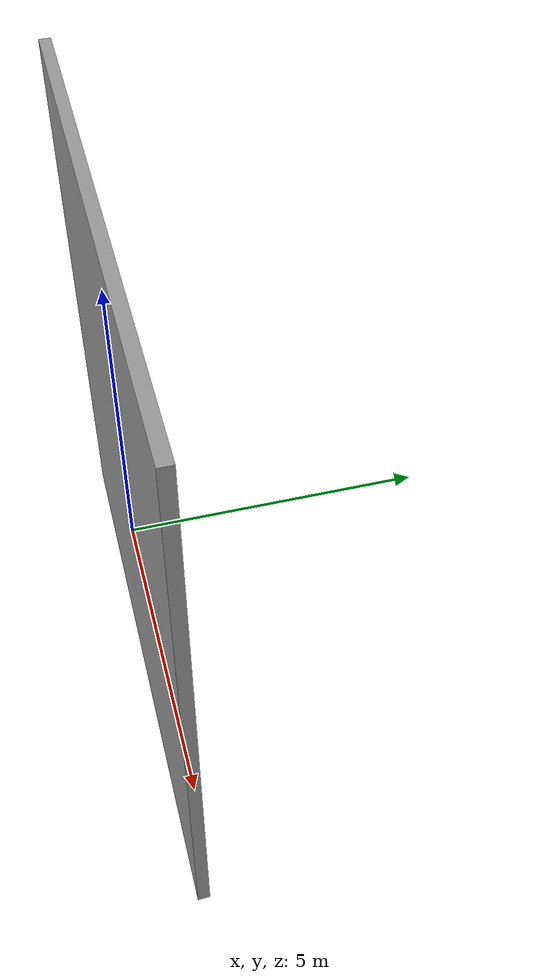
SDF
<?xml version="1.0" ?>
<sdf version="1.5">
  <model name="grey_wall">
    <static>true</static>
    <link name="link">
      <pose>0 0 1.4 0 0 0</pose>
      <collision name="collision">
        <geometry>
          <box>
            <size>10.0 0.2 10.0</size>
          </box>
        </geometry>
      </collision>
      <visual name="visual">
        <cast_shadows>false</cast_shadows>
        <geometry>
          <box>
            <size>10.0 0.2 10.0</size>
          </box>
        </geometry>
        <material>
          <script>
            <uri>file://aerial_robot_simulation/gazebo_model/models/grey_wall/materials/scripts</uri>
            <uri>file://aerial_robot_simulation/gazebo_model/models/grey_wall/materials/textures</uri>
            <name>vrc/grey_wall</name>
          </script>
        </material>
      </visual>
    </link>
  </model>
</sdf>
